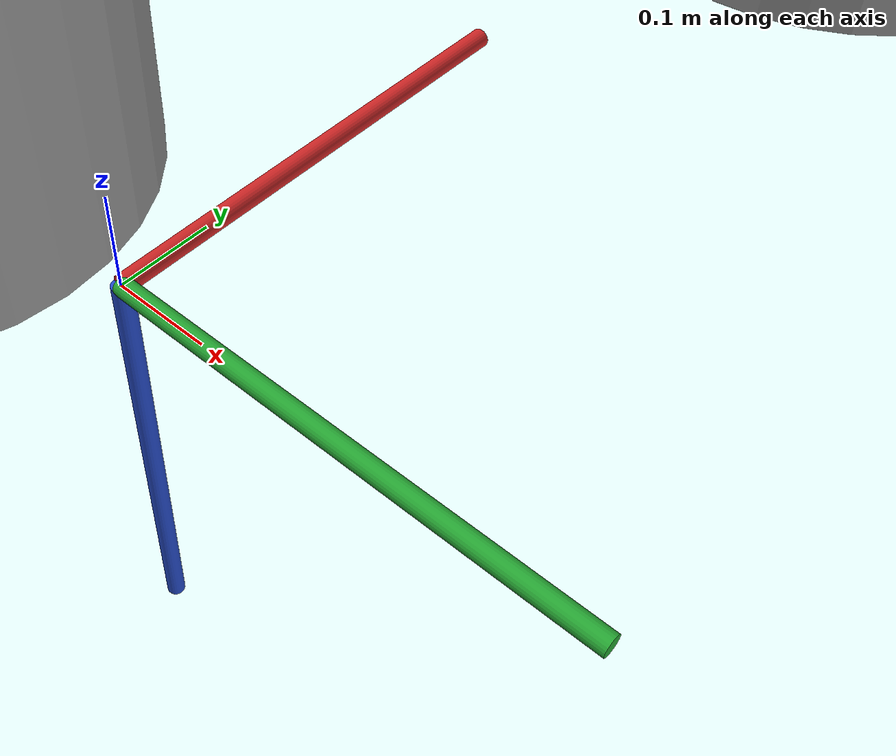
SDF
<sdf version="1.7">
 <world name="oceans_waves">
  <physics name="default_physics" default="1" type="ode">
   <max_step_size>0.002</max_step_size>
   <real_time_factor>1</real_time_factor>
   <real_time_update_rate>500</real_time_update_rate>
  </physics>
  <scene>
   <ambient>0.01 0.01 0.01 1</ambient>
   <sky><clouds><speed>12</speed></clouds></sky>
   <shadows>1</shadows>
   <background>0.7 0.7 0.7 1</background>
  </scene>
  <spherical_coordinates>
   <latitude_deg>56.719</latitude_deg>
   <longitude_deg>3.51562</longitude_deg>
   <surface_model>EARTH_WGS84</surface_model>
   <elevation>0</elevation>
   <heading_deg>0</heading_deg>
  </spherical_coordinates>
  <light name="sun1" type="directional">
   <pose>50 0 150 0 -0 0</pose>
   <diffuse>1 1 1 1</diffuse>
   <specular>0.1 0.1 0.1 1</specular>
   <direction>0.3 0.3 -1</direction>
   <cast_shadows>0</cast_shadows>
   <attenuation><range>10</range></attenuation>
   <spot><inner_angle>0</inner_angle><outer_angle>0</outer_angle><falloff>0</falloff></spot>
  </light>
  <light name="sun_diffuse" type="directional">
   <pose>-50 0 -150 0 -0 0</pose>
   <diffuse>0.6 0.6 0.6 1</diffuse>
   <specular>0 0 0 1</specular>
   <direction>-0.3 -0.3 -1</direction>
   <cast_shadows>0</cast_shadows>
   <attenuation><range>10</range></attenuation>
   <spot><inner_angle>0</inner_angle><outer_angle>0</outer_angle><falloff>0</falloff></spot>
  </light>
  <model name="world_ned">
   <static>1</static>
   <link name="world_ned">
    <gravity>0</gravity>
    <pose>0 0 0 -3.14159 -0 1.5708</pose>
    <visual name="N_visual">
     <pose>0.25 0 0 1.5708 -0 1.5708</pose>
     <geometry><cylinder><radius>0.01</radius><length>0.5</length></cylinder></geometry>
     <material>
      <script><uri>file://media/materials/scripts/gazebo.material</uri><name>Gazebo/Red</name></script>
     </material>
    </visual>
    <visual name="E_visual">
     <pose>0 0.25 0 1.5708 -0 0</pose>
     <geometry><cylinder><radius>0.01</radius><length>0.5</length></cylinder></geometry>
     <material>
      <script><uri>file://media/materials/scripts/gazebo.material</uri><name>Gazebo/Green</name></script>
     </material>
    </visual>
    <visual name="D_visual">
     <pose>0 0 0.25 0 -0 0</pose>
     <geometry><cylinder><radius>0.01</radius><length>0.5</length></cylinder></geometry>
     <material>
      <script><uri>file://media/materials/scripts/gazebo.material</uri><name>Gazebo/Blue</name></script>
     </material>
    </visual>
   </link>
  </model>
  <plugin name="underwater_current_plugin" filename="libuuv_underwater_current_ros_plugin.so">
   <namespace>hydrodynamics</namespace>
   <constant_current>
    <topic>current_velocity</topic>
    <velocity><mean>0</mean><min>0</min><max>5</max><mu>0.0</mu><noiseAmp>0.0</noiseAmp></velocity>
    <horizontal_angle>
     <mean>0</mean>
     <min>-3.141592653589793238</min>
     <max>3.141592653589793238</max>
     <mu>0.0</mu>
     <noiseAmp>0.0</noiseAmp>
    </horizontal_angle>
    <vertical_angle>
     <mean>0</mean>
     <min>-3.141592653589793238</min>
     <max>3.141592653589793238</max>
     <mu>0.0</mu>
     <noiseAmp>0.0</noiseAmp>
    </vertical_angle>
   </constant_current>
  </plugin>
  <plugin name="sc_interface" filename="libuuv_sc_ros_interface_plugin.so"/>
  <gravity>0 0 -9.8</gravity>
  <magnetic_field>6e-06 2.3e-05 -4.2e-05</magnetic_field>
  <atmosphere type="adiabatic"/>
  <model name="Untitled">
   <link name="link_0">
    <inertial>
     <mass>1</mass>
     <inertia>
      <ixx>0.166667</ixx>
      <ixy>0</ixy>
      <ixz>0</ixz>
      <iyy>0.166667</iyy>
      <iyz>0</iyz>
      <izz>0.166667</izz>
     </inertia>
    </inertial>
    <pose>-0 2.3e-05 0 0 -0 0</pose>
    <visual name="visual">
     <geometry>
      <mesh><uri>/home/robot/uuv_ws/src/uuv_rexrov_sonar/models/bridge.dae</uri><scale>1 1 1</scale></mesh>
     </geometry>
     <material>
      <lighting>1</lighting>
      <script><uri>file://media/materials/scripts/gazebo.material</uri><name>Gazebo/Grey</name></script>
      <shader type="pixel"/>
     </material>
    </visual>
    <collision name="collision">
     <geometry>
      <mesh><uri>/home/robot/uuv_ws/src/uuv_rexrov_sonar/models/bridge.dae</uri><scale>1 1 1</scale></mesh>
     </geometry>
     <surface>
      <friction>
       <ode><mu>1</mu><mu2>1</mu2><fdir1>0 0 0</fdir1><slip1>0</slip1><slip2>0</slip2></ode>
       <torsional>
        <coefficient>1</coefficient>
        <patch_radius>0</patch_radius>
        <surface_radius>0</surface_radius>
        <use_patch_radius>1</use_patch_radius>
        <ode><slip>0</slip></ode>
       </torsional>
      </friction>
      <bounce><restitution_coefficient>0</restitution_coefficient><threshold>1e+06</threshold></bounce>
      <contact>
       <collide_without_contact>0</collide_without_contact>
       <collide_without_contact_bitmask>1</collide_without_contact_bitmask>
       <collide_bitmask>1</collide_bitmask>
       <ode>
        <soft_cfm>0</soft_cfm>
        <soft_erp>0.2</soft_erp>
        <kp>1e+13</kp>
        <kd>1</kd>
        <max_vel>0.01</max_vel>
        <min_depth>0</min_depth>
       </ode>
       <bullet>
        <split_impulse>1</split_impulse>
        <split_impulse_penetration_threshold>-0.01</split_impulse_penetration_threshold>
        <soft_cfm>0</soft_cfm>
        <soft_erp>0.2</soft_erp>
        <kp>1e+13</kp>
        <kd>1</kd>
       </bullet>
      </contact>
     </surface>
    </collision>
   </link>
   <static>0</static>
   <pose>0 35 0 0 -0 0</pose>
  </model>
 </world>
</sdf>
